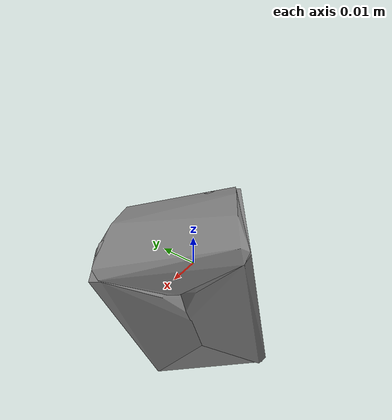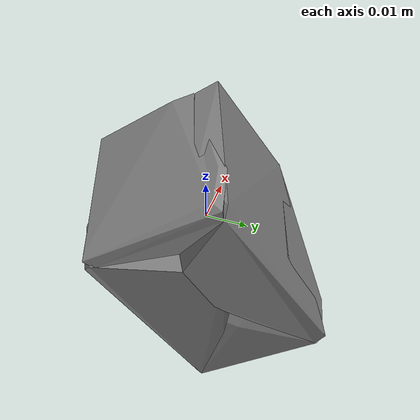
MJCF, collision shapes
<mujoco model="d_lego_duplo">
  <compiler angle="radian" />

  <asset>
    <mesh name="d_lego_duplo_visual_mesh" file="d_lego_duplo/textured.obj" />
    <mesh name="d_lego_duplo_collision_mesh_0" file="d_lego_duplo/textured_coacd_0.stl" />
    <mesh name="d_lego_duplo_collision_mesh_1" file="d_lego_duplo/textured_coacd_1.stl" />
    <mesh name="d_lego_duplo_collision_mesh_2" file="d_lego_duplo/textured_coacd_2.stl" />
    <mesh name="d_lego_duplo_collision_mesh_3" file="d_lego_duplo/textured_coacd_3.stl" />
    <texture name="d_lego_duplo_texture" type="2d" file="d_lego_duplo/texture_map.png" />
    <material name="d_lego_duplo_material" texture="d_lego_duplo_texture" />
  </asset>

  <worldbody>
    <body name="d_lego_duplo" pos="0 0 0" euler="0 0 0">
      <freejoint name="d_lego_duplo_joint" />
      <geom name="d_lego_duplo_visual_geom" type="mesh" mesh="d_lego_duplo_visual_mesh" material="d_lego_duplo_material" pos="0.02022260894778108 0.029911376763957505 -0.022775232245389507" euler="0 0 0" contype="0" conaffinity="0" group="0" />
      <geom name="d_lego_duplo_collision_geom_0" type="mesh" mesh="d_lego_duplo_collision_mesh_0" pos="0.02022260894778108 0.029911376763957505 -0.022775232245389507" euler="0 0 0" contype="1" conaffinity="1" group="3" />
      <geom name="d_lego_duplo_collision_geom_1" type="mesh" mesh="d_lego_duplo_collision_mesh_1" pos="0.02022260894778108 0.029911376763957505 -0.022775232245389507" euler="0 0 0" contype="1" conaffinity="1" group="3" />
      <geom name="d_lego_duplo_collision_geom_2" type="mesh" mesh="d_lego_duplo_collision_mesh_2" pos="0.02022260894778108 0.029911376763957505 -0.022775232245389507" euler="0 0 0" contype="1" conaffinity="1" group="3" />
      <geom name="d_lego_duplo_collision_geom_3" type="mesh" mesh="d_lego_duplo_collision_mesh_3" pos="0.02022260894778108 0.029911376763957505 -0.022775232245389507" euler="0 0 0" contype="1" conaffinity="1" group="3" />
      <inertial pos="0 0 0" euler="0 0 0" mass="0.0372" diaginertia="0.001 0.001 0.001" />
    </body>
  </worldbody>
</mujoco>
